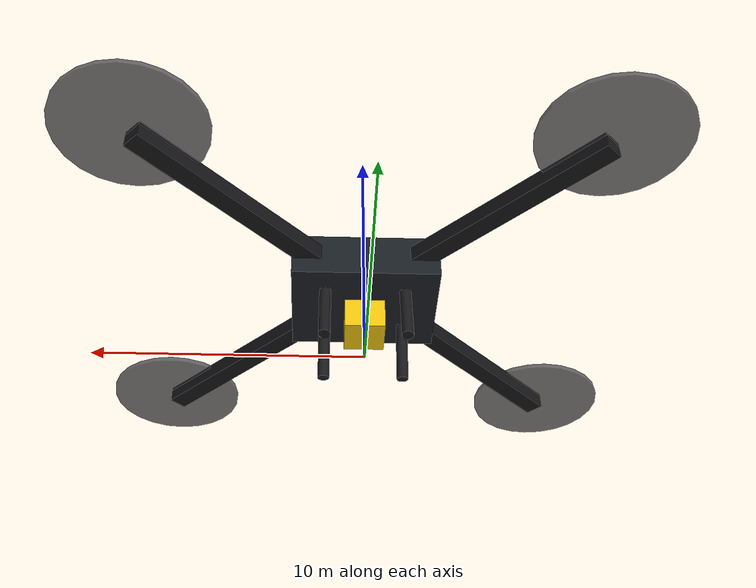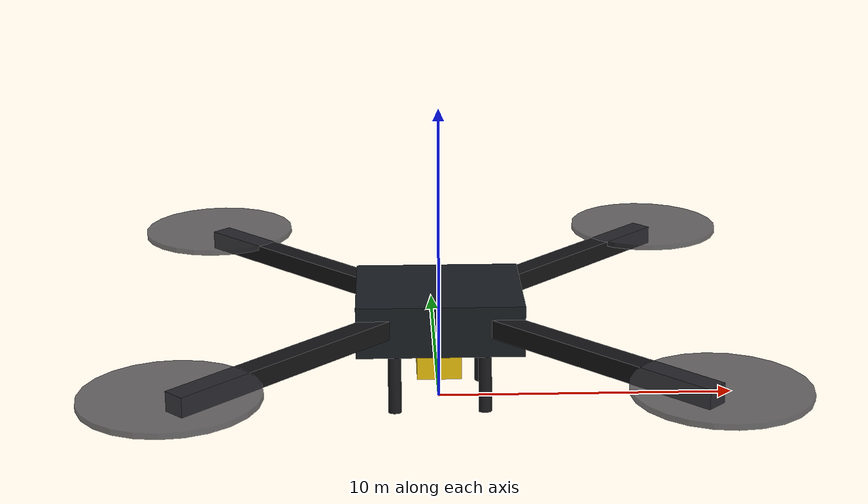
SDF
<?xml version="1.0"?>
<sdf version="1.10">
  <model name="large_uav_shell">
    <static>true</static>
    <link name="visual_body">
      <visual name="body"><pose>0 0 3.1 0 0 0</pose><geometry><box><size>5.5 4.35 1.72</size></box></geometry><material><ambient>0.04 0.05 0.06 1</ambient><diffuse>0.10 0.12 0.14 1</diffuse><specular>0.5 0.5 0.5 1</specular></material></visual>
      <visual name="arm_1"><pose>4.1 4.1 3.2 0 0 0.7854</pose><geometry><box><size>10.8 0.74 0.63</size></box></geometry><material><ambient>0.03 0.03 0.035 1</ambient><diffuse>0.08 0.08 0.09 1</diffuse></material></visual>
      <visual name="arm_2"><pose>4.1 -4.1 3.2 0 0 -0.7854</pose><geometry><box><size>10.8 0.74 0.63</size></box></geometry><material><ambient>0.03 0.03 0.035 1</ambient><diffuse>0.08 0.08 0.09 1</diffuse></material></visual>
      <visual name="arm_3"><pose>-4.1 4.1 3.2 0 0 -0.7854</pose><geometry><box><size>10.8 0.74 0.63</size></box></geometry><material><ambient>0.03 0.03 0.035 1</ambient><diffuse>0.08 0.08 0.09 1</diffuse></material></visual>
      <visual name="arm_4"><pose>-4.1 -4.1 3.2 0 0 0.7854</pose><geometry><box><size>10.8 0.74 0.63</size></box></geometry><material><ambient>0.03 0.03 0.035 1</ambient><diffuse>0.08 0.08 0.09 1</diffuse></material></visual>
      <visual name="rotor_1"><pose>8 8 3.45 0 0 0</pose><geometry><cylinder><radius>2.7</radius><length>0.18</length></cylinder></geometry><material><ambient>0.12 0.12 0.13 0.75</ambient><diffuse>0.22 0.22 0.24 0.75</diffuse></material></visual>
      <visual name="rotor_2"><pose>8 -8 3.45 0 0 0</pose><geometry><cylinder><radius>2.7</radius><length>0.18</length></cylinder></geometry><material><ambient>0.12 0.12 0.13 0.75</ambient><diffuse>0.22 0.22 0.24 0.75</diffuse></material></visual>
      <visual name="rotor_3"><pose>-8 8 3.45 0 0 0</pose><geometry><cylinder><radius>2.7</radius><length>0.18</length></cylinder></geometry><material><ambient>0.12 0.12 0.13 0.75</ambient><diffuse>0.22 0.22 0.24 0.75</diffuse></material></visual>
      <visual name="rotor_4"><pose>-8 -8 3.45 0 0 0</pose><geometry><cylinder><radius>2.7</radius><length>0.18</length></cylinder></geometry><material><ambient>0.12 0.12 0.13 0.75</ambient><diffuse>0.22 0.22 0.24 0.75</diffuse></material></visual>
      <visual name="leg_1"><pose>1.5 1.2 1.4 0.15 0 0</pose><geometry><cylinder><radius>0.22</radius><length>2.8</length></cylinder></geometry><material><ambient>0.04 0.04 0.045 1</ambient><diffuse>0.10 0.10 0.11 1</diffuse></material></visual>
      <visual name="leg_2"><pose>1.5 -1.2 1.4 -0.15 0 0</pose><geometry><cylinder><radius>0.22</radius><length>2.8</length></cylinder></geometry><material><ambient>0.04 0.04 0.045 1</ambient><diffuse>0.10 0.10 0.11 1</diffuse></material></visual>
      <visual name="leg_3"><pose>-1.5 1.2 1.4 0.15 0 0</pose><geometry><cylinder><radius>0.22</radius><length>2.8</length></cylinder></geometry><material><ambient>0.04 0.04 0.045 1</ambient><diffuse>0.10 0.10 0.11 1</diffuse></material></visual>
      <visual name="leg_4"><pose>-1.5 -1.2 1.4 -0.15 0 0</pose><geometry><cylinder><radius>0.22</radius><length>2.8</length></cylinder></geometry><material><ambient>0.04 0.04 0.045 1</ambient><diffuse>0.10 0.10 0.11 1</diffuse></material></visual>
      <visual name="sensor"><pose>0 0 1.5 0 0 0</pose><geometry><box><size>1.5 1.5 1.2</size></box></geometry><material><ambient>0.55 0.45 0.02 1</ambient><diffuse>0.95 0.78 0.05 1</diffuse></material></visual>
    </link>
  </model>
</sdf>
